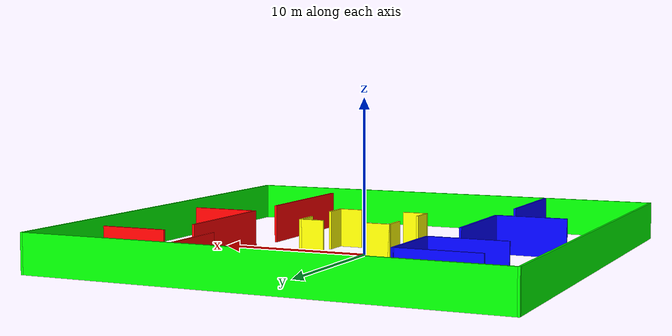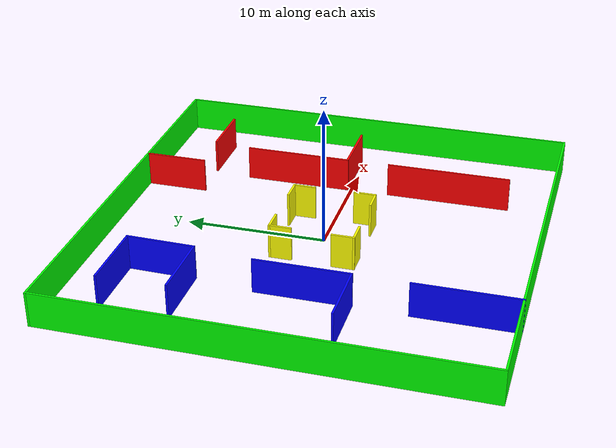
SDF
<?xml version='1.0'?>
<sdf version='1.6'>
  <model name='open_classroom.world'>
    <pose frame=''>0 0.07386 0 0 -0 0</pose>
    <link name='Wall_10'>
      <collision name='Wall_10_Collision'>
        <geometry>
          <box>
            <size>29.999 0.15 2.5</size>
          </box>
        </geometry>
        <pose frame=''>0 0 1.25 0 -0 0</pose>
      </collision>
      <visual name='Wall_10_Visual'>
        <pose frame=''>0 0 1.25 0 -0 0</pose>
        <geometry>
          <box>
            <size>29.999 0.15 2.5</size>
          </box>
        </geometry>
        <material>
          <script>
            <uri>file://media/materials/scripts/gazebo.material</uri>
            <name>Gazebo/Grey</name>
          </script>
          <ambient>0 1 0 1</ambient>
        </material>
      </visual>
      <pose frame=''>-15 0.00164 0 0 0 -1.5708</pose>
    </link>
    <link name='Wall_12'>
      <collision name='Wall_12_Collision'>
        <geometry>
          <box>
            <size>30 0.15 2.5</size>
          </box>
        </geometry>
        <pose frame=''>0 0 1.25 0 -0 0</pose>
      </collision>
      <visual name='Wall_12_Visual'>
        <pose frame=''>0 0 1.25 0 -0 0</pose>
        <geometry>
          <box>
            <size>30 0.15 2.5</size>
          </box>
        </geometry>
        <material>
          <script>
            <uri>file://media/materials/scripts/gazebo.material</uri>
            <name>Gazebo/Grey</name>
          </script>
          <ambient>0 1 0 1</ambient>
        </material>
      </visual>
      <pose frame=''>15 0.00114 0 0 0 -1.5708</pose>
    </link>
    <link name='Wall_14'>
      <collision name='Wall_14_Collision'>
        <geometry>
          <box>
            <size>30.15 0.15 2.5</size>
          </box>
        </geometry>
        <pose frame=''>0 0 1.25 0 -0 0</pose>
      </collision>
      <visual name='Wall_14_Visual'>
        <pose frame=''>0 0 1.25 0 -0 0</pose>
        <geometry>
          <box>
            <size>30.15 0.15 2.5</size>
          </box>
        </geometry>
        <material>
          <script>
            <uri>file://media/materials/scripts/gazebo.material</uri>
            <name>Gazebo/Grey</name>
          </script>
          <ambient>0 1 0 1</ambient>
        </material>
      </visual>
      <pose frame=''>0 -14.9234 0 0 0 -3.3e-05</pose>
    </link>
    <link name='Wall_16'>
      <collision name='Wall_16_Collision'>
        <geometry>
          <box>
            <size>30 0.15 2.5</size>
          </box>
        </geometry>
        <pose frame=''>0 0 1.25 0 -0 0</pose>
      </collision>
      <visual name='Wall_16_Visual'>
        <pose frame=''>0 0 1.25 0 -0 0</pose>
        <geometry>
          <box>
            <size>30 0.15 2.5</size>
          </box>
        </geometry>
        <material>
          <script>
            <uri>file://media/materials/scripts/gazebo.material</uri>
            <name>Gazebo/Grey</name>
          </script>
          <ambient>0 1 0 1</ambient>
        </material>
      </visual>
      <pose frame=''>-0.075 14.9261 0 0 -0 0</pose>
    </link>
    <link name='Wall_20'>
      <collision name='Wall_20_Collision'>
        <geometry>
          <box>
            <size>4.5 0.15 2.5</size>
          </box>
        </geometry>
        <pose frame=''>0 0 1.25 0 -0 0</pose>
      </collision>
      <visual name='Wall_20_Visual'>
        <pose frame=''>0 0 1.25 0 -0 0</pose>
        <geometry>
          <box>
            <size>4.5 0.15 2.5</size>
          </box>
        </geometry>
        <material>
          <script>
            <uri>file://media/materials/scripts/gazebo.material</uri>
            <name>Gazebo/Grey</name>
          </script>
          <ambient>1 0 0 1</ambient>
        </material>
      </visual>
      <pose frame=''>4.86357 12.6872 0 0 0 -1.5708</pose>
    </link>
    <link name='Wall_22'>
      <collision name='Wall_22_Collision'>
        <geometry>
          <box>
            <size>4.25 0.15 2.5</size>
          </box>
        </geometry>
        <pose frame=''>0 0 1.25 0 -0 0</pose>
      </collision>
      <visual name='Wall_22_Visual'>
        <pose frame=''>0 0 1.25 0 -0 0</pose>
        <geometry>
          <box>
            <size>4.25 0.15 2.5</size>
          </box>
        </geometry>
        <material>
          <script>
            <uri>file://media/materials/scripts/gazebo.material</uri>
            <name>Gazebo/Grey</name>
          </script>
          <ambient>1 0 0 1</ambient>
        </material>
      </visual>
      <pose frame=''>10.1684 10.6629 0 0 -0 0</pose>
    </link>
    <link name='Wall_25'>
      <collision name='Wall_25_Collision'>
        <geometry>
          <box>
            <size>7.75 0.15 2.5</size>
          </box>
        </geometry>
        <pose frame=''>0 0 1.25 0 -0 0</pose>
      </collision>
      <visual name='Wall_25_Visual'>
        <pose frame=''>0 0 1.25 0 -0 0</pose>
        <geometry>
          <box>
            <size>7.75 0.15 2.5</size>
          </box>
        </geometry>
        <material>
          <script>
            <uri>file://media/materials/scripts/gazebo.material</uri>
            <name>Gazebo/Grey</name>
          </script>
          <ambient>1 0 0 1</ambient>
        </material>
      </visual>
      <pose frame=''>7.76461 4.0572 0 0 0 -1.5708</pose>
    </link>
    <link name='Wall_26'>
      <collision name='Wall_26_Collision'>
        <geometry>
          <box>
            <size>4.5 0.15 2.5</size>
          </box>
        </geometry>
        <pose frame=''>0 0 1.25 0 -0 0</pose>
      </collision>
      <visual name='Wall_26_Visual'>
        <pose frame=''>0 0 1.25 0 -0 0</pose>
        <geometry>
          <box>
            <size>4.5 0.15 2.5</size>
          </box>
        </geometry>
        <material>
          <script>
            <uri>file://media/materials/scripts/gazebo.material</uri>
            <name>Gazebo/Grey</name>
          </script>
          <ambient>1 0 0 1</ambient>
        </material>
      </visual>
      <pose frame=''>9.93961 0.257202 0 0 -0 0</pose>
    </link>
    <link name='Wall_28'>
      <collision name='Wall_28_Collision'>
        <geometry>
          <box>
            <size>9 0.15 2.5</size>
          </box>
        </geometry>
        <pose frame=''>0 0 1.25 0 -0 0</pose>
      </collision>
      <visual name='Wall_28_Visual'>
        <pose frame=''>0 0 1.25 0 -0 0</pose>
        <geometry>
          <box>
            <size>9 0.15 2.5</size>
          </box>
        </geometry>
        <material>
          <script>
            <uri>file://media/materials/scripts/gazebo.material</uri>
            <name>Gazebo/Grey</name>
          </script>
          <ambient>1 0 0 1</ambient>
        </material>
      </visual>
      <pose frame=''>7.83537 -7.32287 0 0 0 -1.5708</pose>
    </link>
    <link name='Wall_30'>
      <collision name='Wall_30_Collision'>
        <geometry>
          <box>
            <size>5.25 0.15 2.5</size>
          </box>
        </geometry>
        <pose frame=''>0 0 1.25 0 -0 0</pose>
      </collision>
      <visual name='Wall_30_Visual'>
        <pose frame=''>0 0 1.25 0 -0 0</pose>
        <geometry>
          <box>
            <size>5.25 0.15 2.5</size>
          </box>
        </geometry>
        <material>
          <script>
            <uri>file://media/materials/scripts/gazebo.material</uri>
            <name>Gazebo/Grey</name>
          </script>
          <ambient>0 0 1 1</ambient>
        </material>
      </visual>
      <pose frame=''>-9.45 11.5921 0 0 -0 0</pose>
    </link>
    <link name='Wall_32'>
      <collision name='Wall_32_Collision'>
        <geometry>
          <box>
            <size>7.25 0.15 2.5</size>
          </box>
        </geometry>
        <pose frame=''>0 0 1.25 0 -0 0</pose>
      </collision>
      <visual name='Wall_32_Visual'>
        <pose frame=''>0 0 1.25 0 -0 0</pose>
        <geometry>
          <box>
            <size>7.25 0.15 2.5</size>
          </box>
        </geometry>
        <material>
          <script>
            <uri>file://media/materials/scripts/gazebo.material</uri>
            <name>Gazebo/Grey</name>
          </script>
          <ambient>0 0 1 1</ambient>
        </material>
      </visual>
      <pose frame=''>-7.53303 -11.3761 0 0 -0 1.5708</pose>
    </link>
    <link name='Wall_34'>
      <collision name='Wall_34_Collision'>
        <geometry>
          <box>
            <size>4.75 0.15 2.5</size>
          </box>
        </geometry>
        <pose frame=''>0 0 1.25 0 -0 0</pose>
      </collision>
      <visual name='Wall_34_Visual'>
        <pose frame=''>0 0 1.25 0 -0 0</pose>
        <geometry>
          <box>
            <size>4.75 0.15 2.5</size>
          </box>
        </geometry>
        <material>
          <script>
            <uri>file://media/materials/scripts/gazebo.material</uri>
            <name>Gazebo/Grey</name>
          </script>
          <ambient>0 0 1 1</ambient>
        </material>
      </visual>
      <pose frame=''>-9.78609 -3.97418 0 0 -0 0</pose>
    </link>
    <link name='Wall_36'>
      <collision name='Wall_36_Collision'>
        <geometry>
          <box>
            <size>6.75 0.15 2.5</size>
          </box>
        </geometry>
        <pose frame=''>0 0 1.25 0 -0 0</pose>
      </collision>
      <visual name='Wall_36_Visual'>
        <pose frame=''>0 0 1.25 0 -0 0</pose>
        <geometry>
          <box>
            <size>6.75 0.15 2.5</size>
          </box>
        </geometry>
        <material>
          <script>
            <uri>file://media/materials/scripts/gazebo.material</uri>
            <name>Gazebo/Grey</name>
          </script>
          <ambient>0 0 1 1</ambient>
        </material>
      </visual>
      <pose frame=''>-7.48609 -0.67418 0 0 -0 1.5708</pose>
    </link>
    <link name='Wall_38'>
      <collision name='Wall_38_Collision'>
        <geometry>
          <box>
            <size>5 0.15 2.5</size>
          </box>
        </geometry>
        <pose frame=''>0 0 1.25 0 -0 0</pose>
      </collision>
      <visual name='Wall_38_Visual'>
        <pose frame=''>0 0 1.25 0 -0 0</pose>
        <geometry>
          <box>
            <size>5 0.15 2.5</size>
          </box>
        </geometry>
        <material>
          <script>
            <uri>file://media/materials/scripts/gazebo.material</uri>
            <name>Gazebo/Grey</name>
          </script>
          <ambient>0 0 1 1</ambient>
        </material>
      </visual>
      <pose frame=''>-9.41498 6.85473 0 0 -0 0</pose>
    </link>
    <link name='Wall_52'>
      <collision name='Wall_52_Collision'>
        <geometry>
          <box>
            <size>1.65 0.15 2.5</size>
          </box>
        </geometry>
        <pose frame=''>0 0 1.25 0 -0 0</pose>
      </collision>
      <visual name='Wall_52_Visual'>
        <pose frame=''>0 0 1.25 0 -0 0</pose>
        <geometry>
          <box>
            <size>1.65 0.15 2.5</size>
          </box>
        </geometry>
        <material>
          <script>
            <uri>file://media/materials/scripts/gazebo.material</uri>
            <name>Gazebo/Grey</name>
          </script>
          <ambient>1 1 0 1</ambient>
        </material>
      </visual>
      <pose frame=''>-3 2.17614 0 0 0 -1.5708</pose>
    </link>
    <link name='Wall_56'>
      <collision name='Wall_56_Collision'>
        <geometry>
          <box>
            <size>1.65 0.15 2.5</size>
          </box>
        </geometry>
        <pose frame=''>0 0 1.25 0 -0 0</pose>
      </collision>
      <visual name='Wall_56_Visual'>
        <pose frame=''>0 0 1.25 0 -0 0</pose>
        <geometry>
          <box>
            <size>1.65 0.15 2.5</size>
          </box>
        </geometry>
        <material>
          <script>
            <uri>file://media/materials/scripts/gazebo.material</uri>
            <name>Gazebo/Grey</name>
          </script>
          <ambient>1 1 0 1</ambient>
        </material>
      </visual>
      <pose frame=''>-3.07339 -2.25176 0 0 -0 1.5708</pose>
    </link>
    <link name='Wall_58'>
      <collision name='Wall_58_Collision'>
        <geometry>
          <box>
            <size>1.65 0.15 2.5</size>
          </box>
        </geometry>
        <pose frame=''>0 0 1.25 0 -0 0</pose>
      </collision>
      <visual name='Wall_58_Visual'>
        <pose frame=''>0 0 1.25 0 -0 0</pose>
        <geometry>
          <box>
            <size>1.65 0.15 2.5</size>
          </box>
        </geometry>
        <material>
          <script>
            <uri>file://media/materials/scripts/gazebo.material</uri>
            <name>Gazebo/Grey</name>
          </script>
          <ambient>1 1 0 1</ambient>
        </material>
      </visual>
      <pose frame=''>-2.25 2.92614 0 0 -0 0</pose>
    </link>
    <link name='Wall_60'>
      <collision name='Wall_60_Collision'>
        <geometry>
          <box>
            <size>1.65 0.15 2.5</size>
          </box>
        </geometry>
        <pose frame=''>0 0 1.25 0 -0 0</pose>
      </collision>
      <visual name='Wall_60_Visual'>
        <pose frame=''>0 0 1.25 0 -0 0</pose>
        <geometry>
          <box>
            <size>1.65 0.15 2.5</size>
          </box>
        </geometry>
        <material>
          <script>
            <uri>file://media/materials/scripts/gazebo.material</uri>
            <name>Gazebo/Grey</name>
          </script>
          <ambient>1 1 0 1</ambient>
        </material>
      </visual>
      <pose frame=''>-2.32339 -3.00176 0 0 -0 0</pose>
    </link>
    <link name='Wall_64'>
      <collision name='Wall_64_Collision'>
        <geometry>
          <box>
            <size>1.65 0.15 2.5</size>
          </box>
        </geometry>
        <pose frame=''>0 0 1.25 0 -0 0</pose>
      </collision>
      <visual name='Wall_64_Visual'>
        <pose frame=''>0 0 1.25 0 -0 0</pose>
        <geometry>
          <box>
            <size>1.65 0.15 2.5</size>
          </box>
        </geometry>
        <material>
          <script>
            <uri>file://media/materials/scripts/gazebo.material</uri>
            <name>Gazebo/Grey</name>
          </script>
          <ambient>1 1 0 1</ambient>
        </material>
      </visual>
      <pose frame=''>2.25 2.92614 0 0 -0 3.14159</pose>
    </link>
    <link name='Wall_66'>
      <collision name='Wall_66_Collision'>
        <geometry>
          <box>
            <size>1.65 0.15 2.5</size>
          </box>
        </geometry>
        <pose frame=''>0 0 1.25 0 -0 0</pose>
      </collision>
      <visual name='Wall_66_Visual'>
        <pose frame=''>0 0 1.25 0 -0 0</pose>
        <geometry>
          <box>
            <size>1.65 0.15 2.5</size>
          </box>
        </geometry>
        <material>
          <script>
            <uri>file://media/materials/scripts/gazebo.material</uri>
            <name>Gazebo/Grey</name>
          </script>
          <ambient>1 1 0 1</ambient>
        </material>
      </visual>
      <pose frame=''>3 2.17614 0 0 0 -1.5708</pose>
    </link>
    <link name='Wall_69'>
      <collision name='Wall_69_Collision'>
        <geometry>
          <box>
            <size>1.65 0.15 2.5</size>
          </box>
        </geometry>
        <pose frame=''>0 0 1.25 0 -0 0</pose>
      </collision>
      <visual name='Wall_69_Visual'>
        <pose frame=''>0 0 1.25 0 -0 0</pose>
        <geometry>
          <box>
            <size>1.65 0.15 2.5</size>
          </box>
        </geometry>
        <material>
          <script>
            <uri>file://media/materials/scripts/gazebo.material</uri>
            <name>Gazebo/Grey</name>
          </script>
          <ambient>1 1 0 1</ambient>
        </material>
      </visual>
      <pose frame=''>2.31361 -3.00335 0 0 -0 3.14159</pose>
    </link>
    <link name='Wall_71'>
      <collision name='Wall_71_Collision'>
        <geometry>
          <box>
            <size>1.65 0.15 2.5</size>
          </box>
        </geometry>
        <pose frame=''>0 0 1.25 0 -0 0</pose>
      </collision>
      <visual name='Wall_71_Visual'>
        <pose frame=''>0 0 1.25 0 -0 0</pose>
        <geometry>
          <box>
            <size>1.65 0.15 2.5</size>
          </box>
        </geometry>
        <material>
          <script>
            <uri>file://media/materials/scripts/gazebo.material</uri>
            <name>Gazebo/Grey</name>
          </script>
          <ambient>1 1 0 1</ambient>
        </material>
      </visual>
      <pose frame=''>3.06361 -2.25335 0 0 -0 1.5708</pose>
    </link>
    <link name='Wall_75'>
      <collision name='Wall_75_Collision'>
        <geometry>
          <box>
            <size>4.88827 0.15 2.5</size>
          </box>
        </geometry>
        <pose frame=''>0 0 1.25 0 -0 0</pose>
      </collision>
      <visual name='Wall_75_Visual'>
        <pose frame=''>0 0 1.25 0 -0 0</pose>
        <geometry>
          <box>
            <size>4.88827 0.15 2.5</size>
          </box>
        </geometry>
        <material>
          <script>
            <uri>file://media/materials/scripts/gazebo.material</uri>
            <name>Gazebo/Grey</name>
          </script>
          <ambient>0 0 1 1</ambient>
        </material>
      </visual>
      <pose frame=''>-6.94499 9.22343 0 0 -0 1.55181</pose>
    </link>
    <static>1</static>
  </model>
</sdf>
